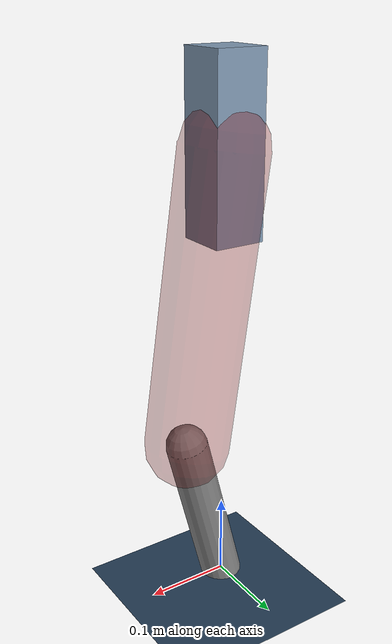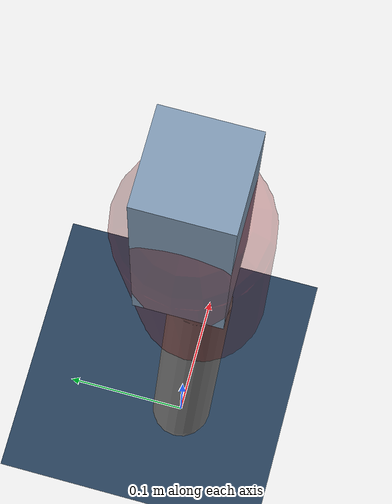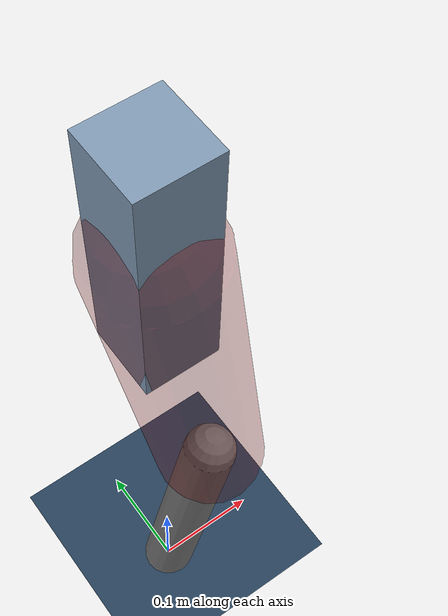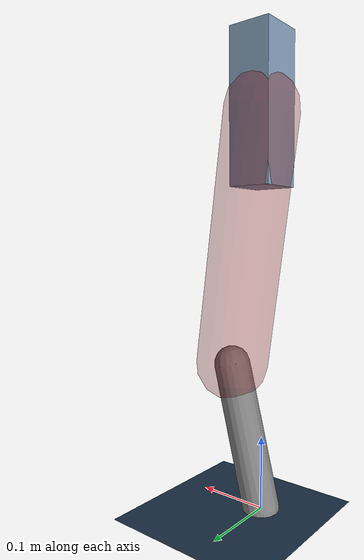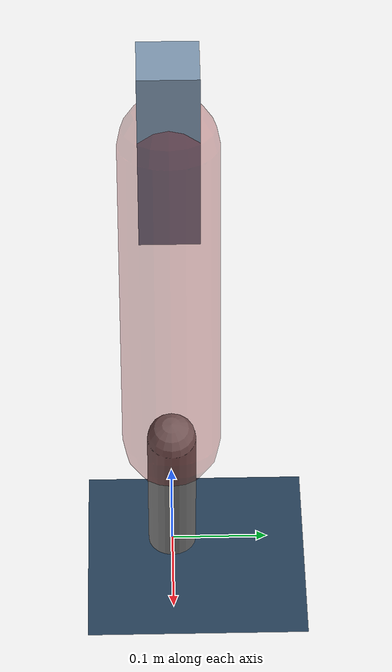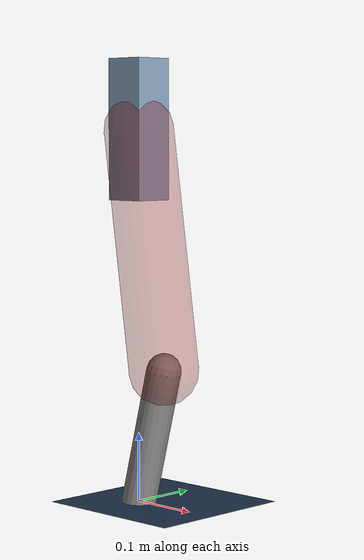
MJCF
<mujoco model="Hopper2D">
	<compiler inertiafromgeom="true" angle="radian" />
	<option timestep="0.001" integrator="implicit" cone="elliptic" solver="Newton" tolerance="1e-10" />

	<default>
		<geom contype="1" conaffinity="1" condim="3" friction="2 0.005 0.0001" solref="0.005 1" />
		<joint limited="true" damping="0.1" />
	</default>

	<asset>
		<texture name="skybox" type="skybox" builtin="gradient" rgb1=".4 .6 .8" rgb2="0 0 0" width="800" height="800" />
		<texture name="grid" type="2d" builtin="checker" rgb1=".1 .2 .3" rgb2=".2 .3 .4" width="300" height="300" mark="edge" markrgb=".2 .3 .4" />
		<material name="ground" texture="grid" texrepeat="1 1" texuniform="true" reflectance="0.1" />
		<material name="leg" rgba="0.5 0.6 0.7 1" />
	</asset>

	<worldbody>

		<geom name="floor" type="plane" size="5 5 0.25" material="ground" />

		<light directional="false" diffuse="0.8 0.8 0.8" specular="0.3 0.3 0.3" pos="0 0 2" dir="0 0 -1" />
		<light mode="targetbodycom" target="base" directional="false" diffuse="0.8 0.8 0.8" specular="0.3 0.3 0.3" pos="0 0 2" dir="0 0 -1" />

		<camera name="fixed" pos="0 -2 1" xyaxes="1 0 0 0 0 1" />
		<camera name="tracking" mode="trackcom" pos="0 -3 1" />

		<body name="root" pos="0 0 0.5364509765773606">
			<joint name="slide_x" type="slide" axis="1 0 0" range="-100 100" />
			<joint name="slide_z" type="slide" axis="0 0 1" range="0 10" />

			<body name="base" pos="0 0 0">
				<geom name="torso" type="box" size="0.03 0.03 0.1" mass="2.467" material="leg" />

				<body name="link1" pos="0 0 0" euler="0 1.4246106005238783 0">
					<joint type="hinge" axis="0 -1 0" pos="0 0 0" name="hinge1" limited="true" range="-3.14 3.14" stiffness="0" damping="0.1" />
					<geom name="thigh" type="capsule" fromto="0 0 0 0.34439394460882555 0 0" size="0.05" rgba="0.5 0 0 0.3" mass="1.1109030449047115" />

					<body name="link2" pos="0.34439394460882555 0 0" euler="0 0.39708811181385395 0">
						<joint type="hinge" axis="0 -1 0" pos="0 0 0" name="hinge2" limited="true" range="-3.14 3.14" stiffness="0" damping="0.1" />
						<geom name="shank" type="capsule" fromto="0 0 0 0.20205703196853503 0 0" size="0.025" mass="0.402645625574828" />

					</body>
				</body>
			</body>
		</body>
	</worldbody>

	<actuator>
		<motor name="torque1" joint="hinge1" ctrlrange="-85.5329574306322 85.5329574306322" ctrllimited="true" gear="1" />
		<motor name="torque2" joint="hinge2" ctrlrange="-84.31711289942717 84.31711289942717" ctrllimited="true" gear="1" />
	</actuator>
</mujoco>
